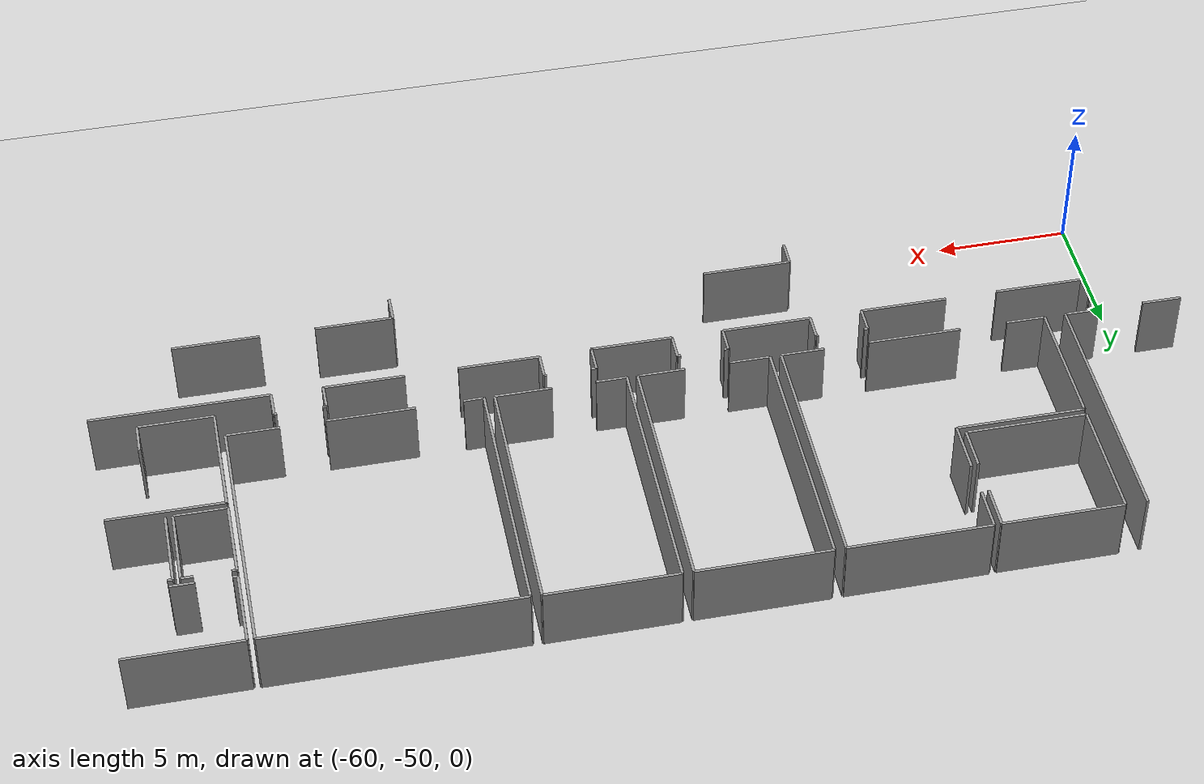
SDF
<sdf version="1.6">
 <world name="default">
  <model name="ground_plane">
   <static>1</static>
   <link name="link">
    <collision name="collision">
     <geometry><plane><normal>0 0 1</normal><size>100 100</size></plane></geometry>
     <surface><friction><ode><mu>100</mu><mu2>50</mu2></ode></friction></surface>
    </collision>
    <visual name="visual">
     <cast_shadows>0</cast_shadows>
     <geometry><plane><normal>0 0 1</normal><size>100 100</size></plane></geometry>
     <material>
      <script><uri>file://media/materials/scripts/gazebo.material</uri><name>Gazebo/Grey</name></script>
     </material>
    </visual>
   </link>
  </model>
  <model name="0510045925_40">
   <static>1</static>
   <link name="Wall_1177">
    <collision name="Wall_1177_Collision">
     <geometry><box><size>9.60305576001 0.1 2.5</size></box></geometry>
     <pose>4.80152788 0 1.25 0 0 0</pose>
    </collision>
    <visual name="Wall_1177_Visual">
     <pose>4.80152788 0 1.25 0 0 0</pose>
     <geometry><box><size>9.60305576001 0.1 2.5</size></box></geometry>
     <material>
      <script><uri>file://media/materials/scripts/gazebo.material</uri><name>Gazebo/Grey</name></script>
      <ambient>1 1 1 1</ambient>
     </material>
    </visual>
    <pose>76.2493845334 -134.630516992 0 0 0 -1.57079632679</pose>
   </link>
   <link name="Wall_1178">
    <collision name="Wall_1178_Collision">
     <geometry><box><size>1.29311438796 0.1 2.5</size></box></geometry>
     <pose>0.64655719398 0 1.25 0 0 0</pose>
    </collision>
    <visual name="Wall_1178_Visual">
     <pose>0.64655719398 0 1.25 0 0 0</pose>
     <geometry><box><size>1.29311438796 0.1 2.5</size></box></geometry>
     <material>
      <script><uri>file://media/materials/scripts/gazebo.material</uri><name>Gazebo/Grey</name></script>
      <ambient>1 1 1 1</ambient>
     </material>
    </visual>
    <pose>76.2493845334 -144.233572752 0 0 0 3.14159265359</pose>
   </link>
   <link name="Wall_1179">
    <collision name="Wall_1179_Collision">
     <geometry><box><size>1.47407426207 0.1 2.5</size></box></geometry>
     <pose>0.737037131037 0 1.25 0 0 0</pose>
    </collision>
    <visual name="Wall_1179_Visual">
     <pose>0.737037131037 0 1.25 0 0 0</pose>
     <geometry><box><size>1.47407426207 0.1 2.5</size></box></geometry>
     <material>
      <script><uri>file://media/materials/scripts/gazebo.material</uri><name>Gazebo/Grey</name></script>
      <ambient>1 1 1 1</ambient>
     </material>
    </visual>
    <pose>73.2674805208 -144.233572752 0 0 0 3.14159265359</pose>
   </link>
   <link name="Wall_1238">
    <collision name="Wall_1238_Collision">
     <geometry><box><size>4.47678992919 0.1 2.5</size></box></geometry>
     <pose>2.23839496459 0 1.25 0 0 0</pose>
    </collision>
    <visual name="Wall_1238_Visual">
     <pose>2.23839496459 0 1.25 0 0 0</pose>
     <geometry><box><size>4.47678992919 0.1 2.5</size></box></geometry>
     <material>
      <script><uri>file://media/materials/scripts/gazebo.material</uri><name>Gazebo/Grey</name></script>
      <ambient>1 1 1 1</ambient>
     </material>
    </visual>
    <pose>77.0506332327 -139.123042562 0 0 0 1.57079632679</pose>
   </link>
   <link name="Wall_1239">
    <collision name="Wall_1239_Collision">
     <geometry><box><size>4.45775487932 0.1 2.5</size></box></geometry>
     <pose>2.22887743966 0 1.25 0 0 0</pose>
    </collision>
    <visual name="Wall_1239_Visual">
     <pose>2.22887743966 0 1.25 0 0 0</pose>
     <geometry><box><size>4.45775487932 0.1 2.5</size></box></geometry>
     <material>
      <script><uri>file://media/materials/scripts/gazebo.material</uri><name>Gazebo/Grey</name></script>
      <ambient>1 1 1 1</ambient>
     </material>
    </visual>
    <pose>77.0506332327 -134.646252633 0 0 0 0.0</pose>
   </link>
   <link name="Wall_1240">
    <collision name="Wall_1240_Collision">
     <geometry><box><size>1.58803076064 0.1 2.5</size></box></geometry>
     <pose>0.79401538032 0 1.25 0 0 0</pose>
    </collision>
    <visual name="Wall_1240_Visual">
     <pose>0.79401538032 0 1.25 0 0 0</pose>
     <geometry><box><size>1.58803076064 0.1 2.5</size></box></geometry>
     <material>
      <script><uri>file://media/materials/scripts/gazebo.material</uri><name>Gazebo/Grey</name></script>
      <ambient>1 1 1 1</ambient>
     </material>
    </visual>
    <pose>81.508388112 -134.646252633 0 0 0 -1.57079632679</pose>
   </link>
   <link name="Wall_1241">
    <collision name="Wall_1241_Collision">
     <geometry><box><size>1.58117814269 0.1 2.5</size></box></geometry>
     <pose>0.790589071343 0 1.25 0 0 0</pose>
    </collision>
    <visual name="Wall_1241_Visual">
     <pose>0.790589071343 0 1.25 0 0 0</pose>
     <geometry><box><size>1.58117814269 0.1 2.5</size></box></geometry>
     <material>
      <script><uri>file://media/materials/scripts/gazebo.material</uri><name>Gazebo/Grey</name></script>
      <ambient>1 1 1 1</ambient>
     </material>
    </visual>
    <pose>81.508388112 -137.529174386 0 0 0 -1.57079632679</pose>
   </link>
   <link name="Wall_1242">
    <collision name="Wall_1242_Collision">
     <geometry><box><size>4.45777294184 0.1 2.5</size></box></geometry>
     <pose>2.22888647092 0 1.25 0 0 0</pose>
    </collision>
    <visual name="Wall_1242_Visual">
     <pose>2.22888647092 0 1.25 0 0 0</pose>
     <geometry><box><size>4.45777294184 0.1 2.5</size></box></geometry>
     <material>
      <script><uri>file://media/materials/scripts/gazebo.material</uri><name>Gazebo/Grey</name></script>
      <ambient>1 1 1 1</ambient>
     </material>
    </visual>
    <pose>81.508388112 -139.110352529 0 0 0 -3.13874592933</pose>
   </link>
   <link name="Wall_1243">
    <collision name="Wall_1243_Collision">
     <geometry><box><size>4.84708509936 0.1 2.5</size></box></geometry>
     <pose>2.42354254968 0 1.25 0 0 0</pose>
    </collision>
    <visual name="Wall_1243_Visual">
     <pose>2.42354254968 0 1.25 0 0 0</pose>
     <geometry><box><size>4.84708509936 0.1 2.5</size></box></geometry>
     <material>
      <script><uri>file://media/materials/scripts/gazebo.material</uri><name>Gazebo/Grey</name></script>
      <ambient>1 1 1 1</ambient>
     </material>
    </visual>
    <pose>77.0440344154 -144.22900434 0 0 0 1.57079632679</pose>
   </link>
   <link name="Wall_1244">
    <collision name="Wall_1244_Collision">
     <geometry><box><size>4.73059059415 0.1 2.5</size></box></geometry>
     <pose>2.36529529707 0 1.25 0 0 0</pose>
    </collision>
    <visual name="Wall_1244_Visual">
     <pose>2.36529529707 0 1.25 0 0 0</pose>
     <geometry><box><size>4.73059059415 0.1 2.5</size></box></geometry>
     <material>
      <script><uri>file://media/materials/scripts/gazebo.material</uri><name>Gazebo/Grey</name></script>
      <ambient>1 1 1 1</ambient>
     </material>
    </visual>
    <pose>77.0440344154 -139.381919241 0 0 0 0.0</pose>
   </link>
   <link name="Wall_1245">
    <collision name="Wall_1245_Collision">
     <geometry><box><size>1.8953833659 0.1 2.5</size></box></geometry>
     <pose>0.947691682952 0 1.25 0 0 0</pose>
    </collision>
    <visual name="Wall_1245_Visual">
     <pose>0.947691682952 0 1.25 0 0 0</pose>
     <geometry><box><size>1.8953833659 0.1 2.5</size></box></geometry>
     <material>
      <script><uri>file://media/materials/scripts/gazebo.material</uri><name>Gazebo/Grey</name></script>
      <ambient>1 1 1 1</ambient>
     </material>
    </visual>
    <pose>81.7746250095 -139.381919241 0 0 0 1.57079632679</pose>
   </link>
   <link name="Wall_1246">
    <collision name="Wall_1246_Collision">
     <geometry><box><size>1.57077231542 0.1 2.5</size></box></geometry>
     <pose>0.785386157712 0 1.25 0 0 0</pose>
    </collision>
    <visual name="Wall_1246_Visual">
     <pose>0.785386157712 0 1.25 0 0 0</pose>
     <geometry><box><size>1.57077231542 0.1 2.5</size></box></geometry>
     <material>
      <script><uri>file://media/materials/scripts/gazebo.material</uri><name>Gazebo/Grey</name></script>
      <ambient>1 1 1 1</ambient>
     </material>
    </visual>
    <pose>81.7746250095 -136.20230451 0 0 0 1.57079632679</pose>
   </link>
   <link name="Wall_1247">
    <collision name="Wall_1247_Collision">
     <geometry><box><size>5.24682114667 0.1 2.5</size></box></geometry>
     <pose>2.62341057334 0 1.25 0 0 0</pose>
    </collision>
    <visual name="Wall_1247_Visual">
     <pose>2.62341057334 0 1.25 0 0 0</pose>
     <geometry><box><size>5.24682114667 0.1 2.5</size></box></geometry>
     <material>
      <script><uri>file://media/materials/scripts/gazebo.material</uri><name>Gazebo/Grey</name></script>
      <ambient>1 1 1 1</ambient>
     </material>
    </visual>
    <pose>81.7746250095 -134.631532195 0 0 0 0.0</pose>
   </link>
   <link name="Wall_1248">
    <collision name="Wall_1248_Collision">
     <geometry><box><size>9.60610136799 0.1 2.5</size></box></geometry>
     <pose>4.80305068399 0 1.25 0 0 0</pose>
    </collision>
    <visual name="Wall_1248_Visual">
     <pose>4.80305068399 0 1.25 0 0 0</pose>
     <geometry><box><size>9.60610136799 0.1 2.5</size></box></geometry>
     <material>
      <script><uri>file://media/materials/scripts/gazebo.material</uri><name>Gazebo/Grey</name></script>
      <ambient>1 1 1 1</ambient>
     </material>
    </visual>
    <pose>87.0214461562 -134.631532195 0 0 0 -1.57079632679</pose>
   </link>
   <link name="Wall_1249">
    <collision name="Wall_1249_Collision">
     <geometry><box><size>1.61696403645 0.1 2.5</size></box></geometry>
     <pose>0.808482018223 0 1.25 0 0 0</pose>
    </collision>
    <visual name="Wall_1249_Visual">
     <pose>0.808482018223 0 1.25 0 0 0</pose>
     <geometry><box><size>1.61696403645 0.1 2.5</size></box></geometry>
     <material>
      <script><uri>file://media/materials/scripts/gazebo.material</uri><name>Gazebo/Grey</name></script>
      <ambient>1 1 1 1</ambient>
     </material>
    </visual>
    <pose>87.0214461562 -144.237633563 0 0 0 3.14159265359</pose>
   </link>
   <link name="Wall_1250">
    <collision name="Wall_1250_Collision">
     <geometry><box><size>3.46133346869 0.1 2.5</size></box></geometry>
     <pose>1.73066673435 0 1.25 0 0 0</pose>
    </collision>
    <visual name="Wall_1250_Visual">
     <pose>1.73066673435 0 1.25 0 0 0</pose>
     <geometry><box><size>3.46133346869 0.1 2.5</size></box></geometry>
     <material>
      <script><uri>file://media/materials/scripts/gazebo.material</uri><name>Gazebo/Grey</name></script>
      <ambient>1 1 1 1</ambient>
     </material>
    </visual>
    <pose>83.7321895383 -144.237633563 0 0 0 3.14159265359</pose>
   </link>
   <link name="Wall_1251">
    <collision name="Wall_1251_Collision">
     <geometry><box><size>1.44643573016 0.1 2.5</size></box></geometry>
     <pose>0.72321786508 0 1.25 0 0 0</pose>
    </collision>
    <visual name="Wall_1251_Visual">
     <pose>0.72321786508 0 1.25 0 0 0</pose>
     <geometry><box><size>1.44643573016 0.1 2.5</size></box></geometry>
     <material>
      <script><uri>file://media/materials/scripts/gazebo.material</uri><name>Gazebo/Grey</name></script>
      <ambient>1 1 1 1</ambient>
     </material>
    </visual>
    <pose>78.490444405 -144.237633563 0 0 0 3.13562676543</pose>
   </link>
   <link name="Wall_1252">
    <collision name="Wall_1252_Collision">
     <geometry><box><size>9.60610136799 0.1 2.5</size></box></geometry>
     <pose>4.80305068399 0 1.25 0 0 0</pose>
    </collision>
    <visual name="Wall_1252_Visual">
     <pose>4.80305068399 0 1.25 0 0 0</pose>
     <geometry><box><size>9.60610136799 0.1 2.5</size></box></geometry>
     <material>
      <script><uri>file://media/materials/scripts/gazebo.material</uri><name>Gazebo/Grey</name></script>
      <ambient>1 1 1 1</ambient>
     </material>
    </visual>
    <pose>87.4361564427 -144.230273343 0 0 0 1.57079632679</pose>
   </link>
   <link name="Wall_1253">
    <collision name="Wall_1253_Collision">
     <geometry><box><size>4.91332707292 0.1 2.5</size></box></geometry>
     <pose>2.45666353646 0 1.25 0 0 0</pose>
    </collision>
    <visual name="Wall_1253_Visual">
     <pose>2.45666353646 0 1.25 0 0 0</pose>
     <geometry><box><size>4.91332707292 0.1 2.5</size></box></geometry>
     <material>
      <script><uri>file://media/materials/scripts/gazebo.material</uri><name>Gazebo/Grey</name></script>
      <ambient>1 1 1 1</ambient>
     </material>
    </visual>
    <pose>87.4361564427 -134.624171975 0 0 0 0.0</pose>
   </link>
   <link name="Wall_1254">
    <collision name="Wall_1254_Collision">
     <geometry><box><size>9.60305576001 0.1 2.5</size></box></geometry>
     <pose>4.80152788 0 1.25 0 0 0</pose>
    </collision>
    <visual name="Wall_1254_Visual">
     <pose>4.80152788 0 1.25 0 0 0</pose>
     <geometry><box><size>9.60305576001 0.1 2.5</size></box></geometry>
     <material>
      <script><uri>file://media/materials/scripts/gazebo.material</uri><name>Gazebo/Grey</name></script>
      <ambient>1 1 1 1</ambient>
     </material>
    </visual>
    <pose>92.3494835156 -134.624171975 0 0 0 -1.57079632679</pose>
   </link>
   <link name="Wall_1255">
    <collision name="Wall_1255_Collision">
     <geometry><box><size>1.74843278089 0.1 2.5</size></box></geometry>
     <pose>0.874216390447 0 1.25 0 0 0</pose>
    </collision>
    <visual name="Wall_1255_Visual">
     <pose>0.874216390447 0 1.25 0 0 0</pose>
     <geometry><box><size>1.74843278089 0.1 2.5</size></box></geometry>
     <material>
      <script><uri>file://media/materials/scripts/gazebo.material</uri><name>Gazebo/Grey</name></script>
      <ambient>1 1 1 1</ambient>
     </material>
    </visual>
    <pose>92.3494835156 -144.227227735 0 0 0 3.14159265359</pose>
   </link>
   <link name="Wall_1256">
    <collision name="Wall_1256_Collision">
     <geometry><box><size>1.5141778301 0.1 2.5</size></box></geometry>
     <pose>0.75708891505 0 1.25 0 0 0</pose>
    </collision>
    <visual name="Wall_1256_Visual">
     <pose>0.75708891505 0 1.25 0 0 0</pose>
     <geometry><box><size>1.5141778301 0.1 2.5</size></box></geometry>
     <material>
      <script><uri>file://media/materials/scripts/gazebo.material</uri><name>Gazebo/Grey</name></script>
      <ambient>1 1 1 1</ambient>
     </material>
    </visual>
    <pose>88.9503312099 -144.227227735 0 0 0 -3.13958125838</pose>
   </link>
   <link name="Wall_1257">
    <collision name="Wall_1257_Collision">
     <geometry><box><size>9.60813177331 0.1 2.5</size></box></geometry>
     <pose>4.80406588665 0 1.25 0 0 0</pose>
    </collision>
    <visual name="Wall_1257_Visual">
     <pose>4.80406588665 0 1.25 0 0 0</pose>
     <geometry><box><size>9.60813177331 0.1 2.5</size></box></geometry>
     <material>
      <script><uri>file://media/materials/scripts/gazebo.material</uri><name>Gazebo/Grey</name></script>
      <ambient>1 1 1 1</ambient>
     </material>
    </visual>
    <pose>92.7428745463 -144.229511941 0 0 0 1.57079632679</pose>
   </link>
   <link name="Wall_1258">
    <collision name="Wall_1258_Collision">
     <geometry><box><size>4.8366792721 0.1 2.5</size></box></geometry>
     <pose>2.41833963605 0 1.25 0 0 0</pose>
    </collision>
    <visual name="Wall_1258_Visual">
     <pose>2.41833963605 0 1.25 0 0 0</pose>
     <geometry><box><size>4.8366792721 0.1 2.5</size></box></geometry>
     <material>
      <script><uri>file://media/materials/scripts/gazebo.material</uri><name>Gazebo/Grey</name></script>
      <ambient>1 1 1 1</ambient>
     </material>
    </visual>
    <pose>92.7428745463 -134.621380168 0 0 0 0.0</pose>
   </link>
   <link name="Wall_1259">
    <collision name="Wall_1259_Collision">
     <geometry><box><size>9.61549199259 0.1 2.5</size></box></geometry>
     <pose>4.80774599629 0 1.25 0 0 0</pose>
    </collision>
    <visual name="Wall_1259_Visual">
     <pose>4.80774599629 0 1.25 0 0 0</pose>
     <geometry><box><size>9.61549199259 0.1 2.5</size></box></geometry>
     <material>
      <script><uri>file://media/materials/scripts/gazebo.material</uri><name>Gazebo/Grey</name></script>
      <ambient>1 1 1 1</ambient>
     </material>
    </visual>
    <pose>97.5795538184 -134.621380168 0 0 0 -1.57079632679</pose>
   </link>
   <link name="Wall_1260">
    <collision name="Wall_1260_Collision">
     <geometry><box><size>2.08776426994 0.1 2.5</size></box></geometry>
     <pose>1.04388213497 0 1.25 0 0 0</pose>
    </collision>
    <visual name="Wall_1260_Visual">
     <pose>1.04388213497 0 1.25 0 0 0</pose>
     <geometry><box><size>2.08776426994 0.1 2.5</size></box></geometry>
     <material>
      <script><uri>file://media/materials/scripts/gazebo.material</uri><name>Gazebo/Grey</name></script>
      <ambient>1 1 1 1</ambient>
     </material>
    </visual>
    <pose>97.5795538184 -144.236872161 0 0 0 3.14159265359</pose>
   </link>
   <link name="Wall_1261">
    <collision name="Wall_1261_Collision">
     <geometry><box><size>1.13425905222 0.1 2.5</size></box></geometry>
     <pose>0.567129526109 0 1.25 0 0 0</pose>
    </collision>
    <visual name="Wall_1261_Visual">
     <pose>0.567129526109 0 1.25 0 0 0</pose>
     <geometry><box><size>1.13425905222 0.1 2.5</size></box></geometry>
     <material>
      <script><uri>file://media/materials/scripts/gazebo.material</uri><name>Gazebo/Grey</name></script>
      <ambient>1 1 1 1</ambient>
     </material>
    </visual>
    <pose>93.877109718 -144.236872161 0 0 0 3.13510359721</pose>
   </link>
   <link name="Wall_1262">
    <collision name="Wall_1262_Collision">
     <geometry><box><size>9.60254815868 0.1 2.5</size></box></geometry>
     <pose>4.80127407934 0 1.25 0 0 0</pose>
    </collision>
    <visual name="Wall_1262_Visual">
     <pose>4.80127407934 0 1.25 0 0 0</pose>
     <geometry><box><size>9.60254815868 0.1 2.5</size></box></geometry>
     <material>
      <script><uri>file://media/materials/scripts/gazebo.material</uri><name>Gazebo/Grey</name></script>
      <ambient>1 1 1 1</ambient>
     </material>
    </visual>
    <pose>97.9668536332 -144.241440573 0 0 0 1.57079632679</pose>
   </link>
   <link name="Wall_1263">
    <collision name="Wall_1263_Collision">
     <geometry><box><size>9.28478972615 0.1 2.5</size></box></geometry>
     <pose>4.64239486307 0 1.25 0 0 0</pose>
    </collision>
    <visual name="Wall_1263_Visual">
     <pose>4.64239486307 0 1.25 0 0 0</pose>
     <geometry><box><size>9.28478972615 0.1 2.5</size></box></geometry>
     <material>
      <script><uri>file://media/materials/scripts/gazebo.material</uri><name>Gazebo/Grey</name></script>
      <ambient>1 1 1 1</ambient>
     </material>
    </visual>
    <pose>97.9668536332 -134.638892414 0 0 0 0.0</pose>
   </link>
   <link name="Wall_1264">
    <collision name="Wall_1264_Collision">
     <geometry><box><size>9.58808152077 0.1 2.5</size></box></geometry>
     <pose>4.79404076039 0 1.25 0 0 0</pose>
    </collision>
    <visual name="Wall_1264_Visual">
     <pose>4.79404076039 0 1.25 0 0 0</pose>
     <geometry><box><size>9.58808152077 0.1 2.5</size></box></geometry>
     <material>
      <script><uri>file://media/materials/scripts/gazebo.material</uri><name>Gazebo/Grey</name></script>
      <ambient>1 1 1 1</ambient>
     </material>
    </visual>
    <pose>107.251643359 -134.638892414 0 0 0 -1.57079632679</pose>
   </link>
   <link name="Wall_1265">
    <collision name="Wall_1265_Collision">
     <geometry><box><size>1.93649907363 0.1 2.5</size></box></geometry>
     <pose>0.968249536814 0 1.25 0 0 0</pose>
    </collision>
    <visual name="Wall_1265_Visual">
     <pose>0.968249536814 0 1.25 0 0 0</pose>
     <geometry><box><size>1.93649907363 0.1 2.5</size></box></geometry>
     <material>
      <script><uri>file://media/materials/scripts/gazebo.material</uri><name>Gazebo/Grey</name></script>
      <ambient>1 1 1 1</ambient>
     </material>
    </visual>
    <pose>107.251643359 -144.226973935 0 0 0 3.14159265359</pose>
   </link>
   <link name="Wall_1266">
    <collision name="Wall_1266_Collision">
     <geometry><box><size>3.24154209284 0.1 2.5</size></box></geometry>
     <pose>1.62077104642 0 1.25 0 0 0</pose>
    </collision>
    <visual name="Wall_1266_Visual">
     <pose>1.62077104642 0 1.25 0 0 0</pose>
     <geometry><box><size>3.24154209284 0.1 2.5</size></box></geometry>
     <material>
      <script><uri>file://media/materials/scripts/gazebo.material</uri><name>Gazebo/Grey</name></script>
      <ambient>1 1 1 1</ambient>
     </material>
    </visual>
    <pose>103.679652801 -144.226973935 0 0 0 3.14159265359</pose>
   </link>
   <link name="Wall_1267">
    <collision name="Wall_1267_Collision">
     <geometry><box><size>0.749866724478 0.1 2.5</size></box></geometry>
     <pose>0.374933362239 0 1.25 0 0 0</pose>
    </collision>
    <visual name="Wall_1267_Visual">
     <pose>0.374933362239 0 1.25 0 0 0</pose>
     <geometry><box><size>0.749866724478 0.1 2.5</size></box></geometry>
     <material>
      <script><uri>file://media/materials/scripts/gazebo.material</uri><name>Gazebo/Grey</name></script>
      <ambient>1 1 1 1</ambient>
     </material>
    </visual>
    <pose>98.7165807974 -144.226973935 0 0 0 -3.12229917786</pose>
   </link>
   <link name="Wall_1285">
    <collision name="Wall_1285_Collision">
     <geometry><box><size>0.103043069973 0.1 2.5</size></box></geometry>
     <pose>0.0515215349864 0 1.25 0 0 0</pose>
    </collision>
    <visual name="Wall_1285_Visual">
     <pose>0.0515215349864 0 1.25 0 0 0</pose>
     <geometry><box><size>0.103043069973 0.1 2.5</size></box></geometry>
     <material>
      <script><uri>file://media/materials/scripts/gazebo.material</uri><name>Gazebo/Grey</name></script>
      <ambient>1 1 1 1</ambient>
     </material>
    </visual>
    <pose>74.9930712418 -144.951321032 0 0 0 0.0</pose>
   </link>
   <link name="Wall_1286">
    <collision name="Wall_1286_Collision">
     <geometry><box><size>0.961143118195 0.1 2.5</size></box></geometry>
     <pose>0.480571559097 0 1.25 0 0 0</pose>
    </collision>
    <visual name="Wall_1286_Visual">
     <pose>0.480571559097 0 1.25 0 0 0</pose>
     <geometry><box><size>0.961143118195 0.1 2.5</size></box></geometry>
     <material>
      <script><uri>file://media/materials/scripts/gazebo.material</uri><name>Gazebo/Grey</name></script>
      <ambient>1 1 1 1</ambient>
     </material>
    </visual>
    <pose>75.0961143118 -144.951321032 0 0 0 -1.57079632679</pose>
   </link>
   <link name="Wall_1287">
    <collision name="Wall_1287_Collision">
     <geometry><box><size>3.29712443847 0.1 2.5</size></box></geometry>
     <pose>1.64856221923 0 1.25 0 0 0</pose>
    </collision>
    <visual name="Wall_1287_Visual">
     <pose>1.64856221923 0 1.25 0 0 0</pose>
     <geometry><box><size>3.29712443847 0.1 2.5</size></box></geometry>
     <material>
      <script><uri>file://media/materials/scripts/gazebo.material</uri><name>Gazebo/Grey</name></script>
      <ambient>1 1 1 1</ambient>
     </material>
    </visual>
    <pose>75.0961143118 -145.912464151 0 0 0 0.0</pose>
   </link>
   <link name="Wall_1288">
    <collision name="Wall_1288_Collision">
     <geometry><box><size>3.23392807289 0.1 2.5</size></box></geometry>
     <pose>1.61696403645 0 1.25 0 0 0</pose>
    </collision>
    <visual name="Wall_1288_Visual">
     <pose>1.61696403645 0 1.25 0 0 0</pose>
     <geometry><box><size>3.23392807289 0.1 2.5</size></box></geometry>
     <material>
      <script><uri>file://media/materials/scripts/gazebo.material</uri><name>Gazebo/Grey</name></script>
      <ambient>1 1 1 1</ambient>
     </material>
    </visual>
    <pose>80.3431892592 -145.912464151 0 0 0 0.0</pose>
   </link>
   <link name="Wall_1289">
    <collision name="Wall_1289_Collision">
     <geometry><box><size>0.961143118195 0.1 2.5</size></box></geometry>
     <pose>0.480571559097 0 1.25 0 0 0</pose>
    </collision>
    <visual name="Wall_1289_Visual">
     <pose>0.480571559097 0 1.25 0 0 0</pose>
     <geometry><box><size>0.961143118195 0.1 2.5</size></box></geometry>
     <material>
      <script><uri>file://media/materials/scripts/gazebo.material</uri><name>Gazebo/Grey</name></script>
      <ambient>1 1 1 1</ambient>
     </material>
    </visual>
    <pose>83.577117332 -145.912464151 0 0 0 1.57079632679</pose>
   </link>
   <link name="Wall_1290">
    <collision name="Wall_1290_Collision">
     <geometry><box><size>0.148473389 0.1 2.5</size></box></geometry>
     <pose>0.0742366945001 0 1.25 0 0 0</pose>
    </collision>
    <visual name="Wall_1290_Visual">
     <pose>0.0742366945001 0 1.25 0 0 0</pose>
     <geometry><box><size>0.148473389 0.1 2.5</size></box></geometry>
     <material>
      <script><uri>file://media/materials/scripts/gazebo.material</uri><name>Gazebo/Grey</name></script>
      <ambient>1 1 1 1</ambient>
     </material>
    </visual>
    <pose>83.577117332 -144.951321032 0 0 0 0.0</pose>
   </link>
   <link name="Wall_1291">
    <collision name="Wall_1291_Collision">
     <geometry><box><size>0.0852770234258 0.1 2.5</size></box></geometry>
     <pose>0.0426385117129 0 1.25 0 0 0</pose>
    </collision>
    <visual name="Wall_1291_Visual">
     <pose>0.0426385117129 0 1.25 0 0 0</pose>
     <geometry><box><size>0.0852770234258 0.1 2.5</size></box></geometry>
     <material>
      <script><uri>file://media/materials/scripts/gazebo.material</uri><name>Gazebo/Grey</name></script>
      <ambient>1 1 1 1</ambient>
     </material>
    </visual>
    <pose>85.4400142128 -144.951321032 0 0 0 0.0</pose>
   </link>
   <link name="Wall_1292">
    <collision name="Wall_1292_Collision">
     <geometry><box><size>0.956828506891 0.1 2.5</size></box></geometry>
     <pose>0.478414253445 0 1.25 0 0 0</pose>
    </collision>
    <visual name="Wall_1292_Visual">
     <pose>0.478414253445 0 1.25 0 0 0</pose>
     <geometry><box><size>0.956828506891 0.1 2.5</size></box></geometry>
     <material>
      <script><uri>file://media/materials/scripts/gazebo.material</uri><name>Gazebo/Grey</name></script>
      <ambient>1 1 1 1</ambient>
     </material>
    </visual>
    <pose>85.5252912363 -144.951321032 0 0 0 -1.57079632679</pose>
   </link>
   <link name="Wall_1293">
    <collision name="Wall_1293_Collision">
     <geometry><box><size>3.30245425243 0.1 2.5</size></box></geometry>
     <pose>1.65122712622 0 1.25 0 0 0</pose>
    </collision>
    <visual name="Wall_1293_Visual">
     <pose>1.65122712622 0 1.25 0 0 0</pose>
     <geometry><box><size>3.30245425243 0.1 2.5</size></box></geometry>
     <material>
      <script><uri>file://media/materials/scripts/gazebo.material</uri><name>Gazebo/Grey</name></script>
      <ambient>1 1 1 1</ambient>
     </material>
    </visual>
    <pose>85.5252912363 -145.908149539 0 0 0 0.0</pose>
   </link>
   <link name="Wall_1294">
    <collision name="Wall_1294_Collision">
     <geometry><box><size>0.95987411487 0.1 2.5</size></box></geometry>
     <pose>0.479937057435 0 1.25 0 0 0</pose>
    </collision>
    <visual name="Wall_1294_Visual">
     <pose>0.479937057435 0 1.25 0 0 0</pose>
     <geometry><box><size>0.95987411487 0.1 2.5</size></box></geometry>
     <material>
      <script><uri>file://media/materials/scripts/gazebo.material</uri><name>Gazebo/Grey</name></script>
      <ambient>1 1 1 1</ambient>
     </material>
    </visual>
    <pose>88.8277454887 -145.908149539 0 0 0 1.57079632679</pose>
   </link>
   <link name="Wall_1295">
    <collision name="Wall_1295_Collision">
     <geometry><box><size>0.15101139565 0.1 2.5</size></box></geometry>
     <pose>0.0755056978249 0 1.25 0 0 0</pose>
    </collision>
    <visual name="Wall_1295_Visual">
     <pose>0.0755056978249 0 1.25 0 0 0</pose>
     <geometry><box><size>0.15101139565 0.1 2.5</size></box></geometry>
     <material>
      <script><uri>file://media/materials/scripts/gazebo.material</uri><name>Gazebo/Grey</name></script>
      <ambient>1 1 1 1</ambient>
     </material>
    </visual>
    <pose>88.8277454887 -144.948275424 0 0 0 0.0</pose>
   </link>
   <link name="Wall_1296">
    <collision name="Wall_1296_Collision">
     <geometry><box><size>0.119032511865 0.1 2.5</size></box></geometry>
     <pose>0.0595162559326 0 1.25 0 0 0</pose>
    </collision>
    <visual name="Wall_1296_Visual">
     <pose>0.0595162559326 0 1.25 0 0 0</pose>
     <geometry><box><size>0.119032511865 0.1 2.5</size></box></geometry>
     <material>
      <script><uri>file://media/materials/scripts/gazebo.material</uri><name>Gazebo/Grey</name></script>
      <ambient>1 1 1 1</ambient>
     </material>
    </visual>
    <pose>90.6079033527 -144.948275424 0 0 0 0.0</pose>
   </link>
   <link name="Wall_1297">
    <collision name="Wall_1297_Collision">
     <geometry><box><size>0.975355955433 0.1 2.5</size></box></geometry>
     <pose>0.487677977716 0 1.25 0 0 0</pose>
    </collision>
    <visual name="Wall_1297_Visual">
     <pose>0.487677977716 0 1.25 0 0 0</pose>
     <geometry><box><size>0.975355955433 0.1 2.5</size></box></geometry>
     <material>
      <script><uri>file://media/materials/scripts/gazebo.material</uri><name>Gazebo/Grey</name></script>
      <ambient>1 1 1 1</ambient>
     </material>
    </visual>
    <pose>90.7269358646 -144.948275424 0 0 0 -1.57079632679</pose>
   </link>
   <link name="Wall_1298">
    <collision name="Wall_1298_Collision">
     <geometry><box><size>3.00373086977 0.1 2.5</size></box></geometry>
     <pose>1.50186543489 0 1.25 0 0 0</pose>
    </collision>
    <visual name="Wall_1298_Visual">
     <pose>1.50186543489 0 1.25 0 0 0</pose>
     <geometry><box><size>3.00373086977 0.1 2.5</size></box></geometry>
     <material>
      <script><uri>file://media/materials/scripts/gazebo.material</uri><name>Gazebo/Grey</name></script>
      <ambient>1 1 1 1</ambient>
     </material>
    </visual>
    <pose>90.7269358646 -145.92363138 0 0 0 0.0</pose>
   </link>
   <link name="Wall_1299">
    <collision name="Wall_1299_Collision">
     <geometry><box><size>1.00428923124 0.1 2.5</size></box></geometry>
     <pose>0.502144615619 0 1.25 0 0 0</pose>
    </collision>
    <visual name="Wall_1299_Visual">
     <pose>0.502144615619 0 1.25 0 0 0</pose>
     <geometry><box><size>1.00428923124 0.1 2.5</size></box></geometry>
     <material>
      <script><uri>file://media/materials/scripts/gazebo.material</uri><name>Gazebo/Grey</name></script>
      <ambient>1 1 1 1</ambient>
     </material>
    </visual>
    <pose>93.7306667343 -145.92363138 0 0 0 1.57079632679</pose>
   </link>
   <link name="Wall_1300">
    <collision name="Wall_1300_Collision">
     <geometry><box><size>0.199233521992 0.1 2.5</size></box></geometry>
     <pose>0.0996167609959 0 1.25 0 0 0</pose>
    </collision>
    <visual name="Wall_1300_Visual">
     <pose>0.0996167609959 0 1.25 0 0 0</pose>
     <geometry><box><size>0.199233521992 0.1 2.5</size></box></geometry>
     <material>
      <script><uri>file://media/materials/scripts/gazebo.material</uri><name>Gazebo/Grey</name></script>
      <ambient>1 1 1 1</ambient>
     </material>
    </visual>
    <pose>93.7306667343 -144.919342149 0 0 0 0.0</pose>
   </link>
   <link name="Wall_1301">
    <collision name="Wall_1301_Collision">
     <geometry><box><size>0.09009923606 0.1 2.5</size></box></geometry>
     <pose>0.04504961803 0 1.25 0 0 0</pose>
    </collision>
    <visual name="Wall_1301_Visual">
     <pose>0.04504961803 0 1.25 0 0 0</pose>
     <geometry><box><size>0.09009923606 0.1 2.5</size></box></geometry>
     <material>
      <script><uri>file://media/materials/scripts/gazebo.material</uri><name>Gazebo/Grey</name></script>
      <ambient>1 1 1 1</ambient>
     </material>
    </visual>
    <pose>95.5631075353 -144.919342149 0 0 0 0.0</pose>
   </link>
   <link name="Wall_1302">
    <collision name="Wall_1302_Collision">
     <geometry><box><size>0.988807390675 0.1 2.5</size></box></geometry>
     <pose>0.494403695338 0 1.25 0 0 0</pose>
    </collision>
    <visual name="Wall_1302_Visual">
     <pose>0.494403695338 0 1.25 0 0 0</pose>
     <geometry><box><size>0.988807390675 0.1 2.5</size></box></geometry>
     <material>
      <script><uri>file://media/materials/scripts/gazebo.material</uri><name>Gazebo/Grey</name></script>
      <ambient>1 1 1 1</ambient>
     </material>
    </visual>
    <pose>95.6532067714 -144.919342149 0 0 0 -1.57079632679</pose>
   </link>
   <link name="Wall_1303">
    <collision name="Wall_1303_Collision">
     <geometry><box><size>2.99104083653 0.1 2.5</size></box></geometry>
     <pose>1.49552041826 0 1.25 0 0 0</pose>
    </collision>
    <visual name="Wall_1303_Visual">
     <pose>1.49552041826 0 1.25 0 0 0</pose>
     <geometry><box><size>2.99104083653 0.1 2.5</size></box></geometry>
     <material>
      <script><uri>file://media/materials/scripts/gazebo.material</uri><name>Gazebo/Grey</name></script>
      <ambient>1 1 1 1</ambient>
     </material>
    </visual>
    <pose>95.6532067714 -145.908149539 0 0 0 0.0</pose>
   </link>
   <link name="Wall_1304">
    <collision name="Wall_1304_Collision">
     <geometry><box><size>2.96388416538 0.1 2.5</size></box></geometry>
     <pose>1.48194208269 0 1.25 0 0 0</pose>
    </collision>
    <visual name="Wall_1304_Visual">
     <pose>1.48194208269 0 1.25 0 0 0</pose>
     <geometry><box><size>2.96388416538 0.1 2.5</size></box></geometry>
     <material>
      <script><uri>file://media/materials/scripts/gazebo.material</uri><name>Gazebo/Grey</name></script>
      <ambient>1 1 1 1</ambient>
     </material>
    </visual>
    <pose>100.592421512 -145.908149539 0 0 0 0.0</pose>
   </link>
   <link name="Wall_1305">
    <collision name="Wall_1305_Collision">
     <geometry><box><size>0.978909164742 0.1 2.5</size></box></geometry>
     <pose>0.489454582371 0 1.25 0 0 0</pose>
    </collision>
    <visual name="Wall_1305_Visual">
     <pose>0.489454582371 0 1.25 0 0 0</pose>
     <geometry><box><size>0.978909164742 0.1 2.5</size></box></geometry>
     <material>
      <script><uri>file://media/materials/scripts/gazebo.material</uri><name>Gazebo/Grey</name></script>
      <ambient>1 1 1 1</ambient>
     </material>
    </visual>
    <pose>103.556305678 -145.908149539 0 0 0 1.57079632679</pose>
   </link>
   <link name="Wall_1306">
    <collision name="Wall_1306_Collision">
     <geometry><box><size>0.138575163067 0.1 2.5</size></box></geometry>
     <pose>0.0692875815335 0 1.25 0 0 0</pose>
    </collision>
    <visual name="Wall_1306_Visual">
     <pose>0.0692875815335 0 1.25 0 0 0</pose>
     <geometry><box><size>0.138575163067 0.1 2.5</size></box></geometry>
     <material>
      <script><uri>file://media/materials/scripts/gazebo.material</uri><name>Gazebo/Grey</name></script>
      <ambient>1 1 1 1</ambient>
     </material>
    </visual>
    <pose>103.556305678 -144.929240375 0 0 0 0.0</pose>
   </link>
   <link name="Wall_1307">
    <collision name="Wall_1307_Collision">
     <geometry><box><size>0.0969518540139 0.1 2.5</size></box></geometry>
     <pose>0.0484759270069 0 1.25 0 0 0</pose>
    </collision>
    <visual name="Wall_1307_Visual">
     <pose>0.0484759270069 0 1.25 0 0 0</pose>
     <geometry><box><size>0.0969518540139 0.1 2.5</size></box></geometry>
     <material>
      <script><uri>file://media/materials/scripts/gazebo.material</uri><name>Gazebo/Grey</name></script>
      <ambient>1 1 1 1</ambient>
     </material>
    </visual>
    <pose>105.341793355 -144.929240375 0 0 0 0.0</pose>
   </link>
   <link name="Wall_1308">
    <collision name="Wall_1308_Collision">
     <geometry><box><size>0.995406207964 0.1 2.5</size></box></geometry>
     <pose>0.497703103982 0 1.25 0 0 0</pose>
    </collision>
    <visual name="Wall_1308_Visual">
     <pose>0.497703103982 0 1.25 0 0 0</pose>
     <geometry><box><size>0.995406207964 0.1 2.5</size></box></geometry>
     <material>
      <script><uri>file://media/materials/scripts/gazebo.material</uri><name>Gazebo/Grey</name></script>
      <ambient>1 1 1 1</ambient>
     </material>
    </visual>
    <pose>105.43874521 -144.929240375 0 0 0 -1.57079632679</pose>
   </link>
   <link name="Wall_1309">
    <collision name="Wall_1309_Collision">
     <geometry><box><size>6.56125479049 0.1 2.5</size></box></geometry>
     <pose>3.28062739524 0 1.25 0 0 0</pose>
    </collision>
    <visual name="Wall_1309_Visual">
     <pose>3.28062739524 0 1.25 0 0 0</pose>
     <geometry><box><size>6.56125479049 0.1 2.5</size></box></geometry>
     <material>
      <script><uri>file://media/materials/scripts/gazebo.material</uri><name>Gazebo/Grey</name></script>
      <ambient>1 1 1 1</ambient>
     </material>
    </visual>
    <pose>105.43874521 -145.924646583 0 0 0 0.0</pose>
   </link>
   <link name="Wall_1315">
    <collision name="Wall_1315_Collision">
     <geometry><box><size>3.22834445826 0.1 2.5</size></box></geometry>
     <pose>1.61417222913 0 1.25 0 0 0</pose>
    </collision>
    <visual name="Wall_1315_Visual">
     <pose>1.61417222913 0 1.25 0 0 0</pose>
     <geometry><box><size>3.22834445826 0.1 2.5</size></box></geometry>
     <material>
      <script><uri>file://media/materials/scripts/gazebo.material</uri><name>Gazebo/Grey</name></script>
      <ambient>1 1 1 1</ambient>
     </material>
    </visual>
    <pose>108.730539834 -149.007309459 0 0 0 3.14159265359</pose>
   </link>
   <link name="Wall_1316">
    <collision name="Wall_1316_Collision">
     <geometry><box><size>2.88139894927 0.1 2.5</size></box></geometry>
     <pose>1.44069947463 0 1.25 0 0 0</pose>
    </collision>
    <visual name="Wall_1316_Visual">
     <pose>1.44069947463 0 1.25 0 0 0</pose>
     <geometry><box><size>2.88139894927 0.1 2.5</size></box></geometry>
     <material>
      <script><uri>file://media/materials/scripts/gazebo.material</uri><name>Gazebo/Grey</name></script>
      <ambient>1 1 1 1</ambient>
     </material>
    </visual>
    <pose>103.466714043 -149.007309459 0 0 0 3.14159265359</pose>
   </link>
   <link name="Wall_1317">
    <collision name="Wall_1317_Collision">
     <geometry><box><size>1.00302022791 0.1 2.5</size></box></geometry>
     <pose>0.501510113956 0 1.25 0 0 0</pose>
    </collision>
    <visual name="Wall_1317_Visual">
     <pose>0.501510113956 0 1.25 0 0 0</pose>
     <geometry><box><size>1.00302022791 0.1 2.5</size></box></geometry>
     <material>
      <script><uri>file://media/materials/scripts/gazebo.material</uri><name>Gazebo/Grey</name></script>
      <ambient>1 1 1 1</ambient>
     </material>
    </visual>
    <pose>100.585315094 -149.007309459 0 0 0 -1.57079632679</pose>
   </link>
   <link name="Wall_1327">
    <collision name="Wall_1327_Collision">
     <geometry><box><size>3.29458643182 0.1 2.5</size></box></geometry>
     <pose>1.64729321591 0 1.25 0 0 0</pose>
    </collision>
    <visual name="Wall_1327_Visual">
     <pose>1.64729321591 0 1.25 0 0 0</pose>
     <geometry><box><size>3.29458643182 0.1 2.5</size></box></geometry>
     <material>
      <script><uri>file://media/materials/scripts/gazebo.material</uri><name>Gazebo/Grey</name></script>
      <ambient>1 1 1 1</ambient>
     </material>
    </visual>
    <pose>88.8457653359 -149.042333951 0 0 0 3.14159265359</pose>
   </link>
   <link name="Wall_1328">
    <collision name="Wall_1328_Collision">
     <geometry><box><size>0.971802746123 0.1 2.5</size></box></geometry>
     <pose>0.485901373062 0 1.25 0 0 0</pose>
    </collision>
    <visual name="Wall_1328_Visual">
     <pose>0.485901373062 0 1.25 0 0 0</pose>
     <geometry><box><size>0.971802746123 0.1 2.5</size></box></geometry>
     <material>
      <script><uri>file://media/materials/scripts/gazebo.material</uri><name>Gazebo/Grey</name></script>
      <ambient>1 1 1 1</ambient>
     </material>
    </visual>
    <pose>85.5511789041 -149.042333951 0 0 0 -1.57079632679</pose>
   </link>
   <link name="Wall_1371">
    <collision name="Wall_1371_Collision">
     <geometry><box><size>2.92708306896 0.1 2.5</size></box></geometry>
     <pose>1.46354153448 0 1.25 0 0 0</pose>
    </collision>
    <visual name="Wall_1371_Visual">
     <pose>1.46354153448 0 1.25 0 0 0</pose>
     <geometry><box><size>2.92708306896 0.1 2.5</size></box></geometry>
     <material>
      <script><uri>file://media/materials/scripts/gazebo.material</uri><name>Gazebo/Grey</name></script>
      <ambient>1 1 1 1</ambient>
     </material>
    </visual>
    <pose>107.517372656 -140.726301363 0 0 0 1.57079632679</pose>
   </link>
   <link name="Wall_1372">
    <collision name="Wall_1372_Collision">
     <geometry><box><size>0.18121367478 0.1 2.5</size></box></geometry>
     <pose>0.0906068373899 0 1.25 0 0 0</pose>
    </collision>
    <visual name="Wall_1372_Visual">
     <pose>0.0906068373899 0 1.25 0 0 0</pose>
     <geometry><box><size>0.18121367478 0.1 2.5</size></box></geometry>
     <material>
      <script><uri>file://media/materials/scripts/gazebo.material</uri><name>Gazebo/Grey</name></script>
      <ambient>1 1 1 1</ambient>
     </material>
    </visual>
    <pose>107.517372656 -137.799218294 0 0 0 0.0</pose>
   </link>
   <link name="Wall_1373">
    <collision name="Wall_1373_Collision">
     <geometry><box><size>0.428923123779 0.1 2.5</size></box></geometry>
     <pose>0.214461561889 0 1.25 0 0 0</pose>
    </collision>
    <visual name="Wall_1373_Visual">
     <pose>0.214461561889 0 1.25 0 0 0</pose>
     <geometry><box><size>0.428923123779 0.1 2.5</size></box></geometry>
     <material>
      <script><uri>file://media/materials/scripts/gazebo.material</uri><name>Gazebo/Grey</name></script>
      <ambient>1 1 1 1</ambient>
     </material>
    </visual>
    <pose>108.995253928 -137.799218294 0 0 0 0.0</pose>
   </link>
   <link name="Wall_1374">
    <collision name="Wall_1374_Collision">
     <geometry><box><size>2.92403746098 0.1 2.5</size></box></geometry>
     <pose>1.46201873049 0 1.25 0 0 0</pose>
    </collision>
    <visual name="Wall_1374_Visual">
     <pose>1.46201873049 0 1.25 0 0 0</pose>
     <geometry><box><size>2.92403746098 0.1 2.5</size></box></geometry>
     <material>
      <script><uri>file://media/materials/scripts/gazebo.material</uri><name>Gazebo/Grey</name></script>
      <ambient>1 1 1 1</ambient>
     </material>
    </visual>
    <pose>109.424177051 -137.799218294 0 0 0 -1.57079632679</pose>
   </link>
   <link name="Wall_1375">
    <collision name="Wall_1375_Collision">
     <geometry><box><size>1.9068068281 0.1 2.5</size></box></geometry>
     <pose>0.953403414048 0 1.25 0 0 0</pose>
    </collision>
    <visual name="Wall_1375_Visual">
     <pose>0.953403414048 0 1.25 0 0 0</pose>
     <geometry><box><size>1.9068068281 0.1 2.5</size></box></geometry>
     <material>
      <script><uri>file://media/materials/scripts/gazebo.material</uri><name>Gazebo/Grey</name></script>
      <ambient>1 1 1 1</ambient>
     </material>
    </visual>
    <pose>109.424177051 -140.723255755 0 0 0 -3.13999542348</pose>
   </link>
   <link name="Wall_1376">
    <collision name="Wall_1376_Collision">
     <geometry><box><size>2.91616964036 0.1 2.5</size></box></geometry>
     <pose>1.45808482018 0 1.25 0 0 0</pose>
    </collision>
    <visual name="Wall_1376_Visual">
     <pose>1.45808482018 0 1.25 0 0 0</pose>
     <geometry><box><size>2.91616964036 0.1 2.5</size></box></geometry>
     <material>
      <script><uri>file://media/materials/scripts/gazebo.material</uri><name>Gazebo/Grey</name></script>
      <ambient>1 1 1 1</ambient>
     </material>
    </visual>
    <pose>109.688129743 -140.718941144 0 0 0 1.57079632679</pose>
   </link>
   <link name="Wall_1377">
    <collision name="Wall_1377_Collision">
     <geometry><box><size>0.189842897388 0.1 2.5</size></box></geometry>
     <pose>0.0949214486942 0 1.25 0 0 0</pose>
    </collision>
    <visual name="Wall_1377_Visual">
     <pose>0.0949214486942 0 1.25 0 0 0</pose>
     <geometry><box><size>0.189842897388 0.1 2.5</size></box></geometry>
     <material>
      <script><uri>file://media/materials/scripts/gazebo.material</uri><name>Gazebo/Grey</name></script>
      <ambient>1 1 1 1</ambient>
     </material>
    </visual>
    <pose>109.688129743 -137.802771503 0 0 0 0.0</pose>
   </link>
   <link name="Wall_1381">
    <collision name="Wall_1381_Collision">
     <geometry><box><size>2.86033349407 0.1 2.5</size></box></geometry>
     <pose>1.43016674704 0 1.25 0 0 0</pose>
    </collision>
    <visual name="Wall_1381_Visual">
     <pose>1.43016674704 0 1.25 0 0 0</pose>
     <geometry><box><size>2.86033349407 0.1 2.5</size></box></geometry>
     <material>
      <script><uri>file://media/materials/scripts/gazebo.material</uri><name>Gazebo/Grey</name></script>
      <ambient>1 1 1 1</ambient>
     </material>
    </visual>
    <pose>107.514327048 -137.494911297 0 0 0 1.57079632679</pose>
   </link>
   <link name="Wall_1382">
    <collision name="Wall_1382_Collision">
     <geometry><box><size>4.24456232075 0.1 2.5</size></box></geometry>
     <pose>2.12228116038 0 1.25 0 0 0</pose>
    </collision>
    <visual name="Wall_1382_Visual">
     <pose>2.12228116038 0 1.25 0 0 0</pose>
     <geometry><box><size>4.24456232075 0.1 2.5</size></box></geometry>
     <material>
      <script><uri>file://media/materials/scripts/gazebo.material</uri><name>Gazebo/Grey</name></script>
      <ambient>1 1 1 1</ambient>
     </material>
    </visual>
    <pose>107.514327048 -134.634577803 0 0 0 0.0</pose>
   </link>
   <link name="Wall_1386">
    <collision name="Wall_1386_Collision">
     <geometry><box><size>0.888556128017 0.1 2.5</size></box></geometry>
     <pose>0.444278064009 0 1.25 0 0 0</pose>
    </collision>
    <visual name="Wall_1386_Visual">
     <pose>0.444278064009 0 1.25 0 0 0</pose>
     <geometry><box><size>0.888556128017 0.1 2.5</size></box></geometry>
     <material>
      <script><uri>file://media/materials/scripts/gazebo.material</uri><name>Gazebo/Grey</name></script>
      <ambient>1 1 1 1</ambient>
     </material>
    </visual>
    <pose>109.850815969 -137.515469151 0 0 0 3.14159265359</pose>
   </link>
   <link name="Wall_1387">
    <collision name="Wall_1387_Collision">
     <geometry><box><size>0.170276793542 0.1 2.5</size></box></geometry>
     <pose>0.0851383967708 0 1.25 0 0 0</pose>
    </collision>
    <visual name="Wall_1387_Visual">
     <pose>0.0851383967708 0 1.25 0 0 0</pose>
     <geometry><box><size>0.170276793542 0.1 2.5</size></box></geometry>
     <material>
      <script><uri>file://media/materials/scripts/gazebo.material</uri><name>Gazebo/Grey</name></script>
      <ambient>1 1 1 1</ambient>
     </material>
    </visual>
    <pose>107.68335829 -137.515469151 0 0 0 3.02056543378</pose>
   </link>
   <link name="Wall_1388">
    <collision name="Wall_1388_Collision">
     <geometry><box><size>4.27577980254 0.1 2.5</size></box></geometry>
     <pose>2.13788990127 0 1.25 0 0 0</pose>
    </collision>
    <visual name="Wall_1388_Visual">
     <pose>2.13788990127 0 1.25 0 0 0</pose>
     <geometry><box><size>4.27577980254 0.1 2.5</size></box></geometry>
     <material>
      <script><uri>file://media/materials/scripts/gazebo.material</uri><name>Gazebo/Grey</name></script>
      <ambient>1 1 1 1</ambient>
     </material>
    </visual>
    <pose>107.539199513 -145.260704043 0 0 0 1.57079632679</pose>
   </link>
   <link name="Wall_1389">
    <collision name="Wall_1389_Collision">
     <geometry><box><size>4.22958808152 0.1 2.5</size></box></geometry>
     <pose>2.11479404076 0 1.25 0 0 0</pose>
    </collision>
    <visual name="Wall_1389_Visual">
     <pose>2.11479404076 0 1.25 0 0 0</pose>
     <geometry><box><size>4.22958808152 0.1 2.5</size></box></geometry>
     <material>
      <script><uri>file://media/materials/scripts/gazebo.material</uri><name>Gazebo/Grey</name></script>
      <ambient>1 1 1 1</ambient>
     </material>
    </visual>
    <pose>107.539199513 -140.984924241 0 0 0 0.0</pose>
   </link>
   <link name="Wall_1393">
    <collision name="Wall_1393_Collision">
     <geometry><box><size>1.16139184285 0.1 2.5</size></box></geometry>
     <pose>0.580695921423 0 1.25 0 0 0</pose>
    </collision>
    <visual name="Wall_1393_Visual">
     <pose>0.580695921423 0 1.25 0 0 0</pose>
     <geometry><box><size>1.16139184285 0.1 2.5</size></box></geometry>
     <material>
      <script><uri>file://media/materials/scripts/gazebo.material</uri><name>Gazebo/Grey</name></script>
      <ambient>1 1 1 1</ambient>
     </material>
    </visual>
    <pose>110.290398721 -144.100073602 0 0 0 -1.57079632679</pose>
   </link>
   <link name="Wall_1394">
    <collision name="Wall_1394_Collision">
     <geometry><box><size>2.7511993135 0.1 2.5</size></box></geometry>
     <pose>1.37559965675 0 1.25 0 0 0</pose>
    </collision>
    <visual name="Wall_1394_Visual">
     <pose>1.37559965675 0 1.25 0 0 0</pose>
     <geometry><box><size>2.7511993135 0.1 2.5</size></box></geometry>
     <material>
      <script><uri>file://media/materials/scripts/gazebo.material</uri><name>Gazebo/Grey</name></script>
      <ambient>1 1 1 1</ambient>
     </material>
    </visual>
    <pose>110.290398721 -145.261465445 0 0 0 3.14131590083</pose>
   </link>
   <pose>-133.95 101.083118449 0 0 0 0</pose>
  </model>
 </world>
</sdf>
